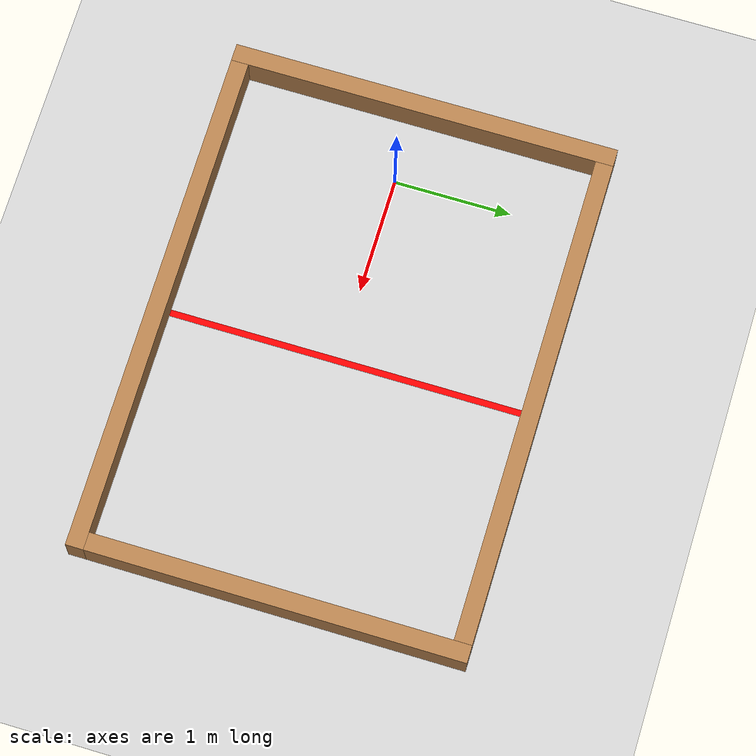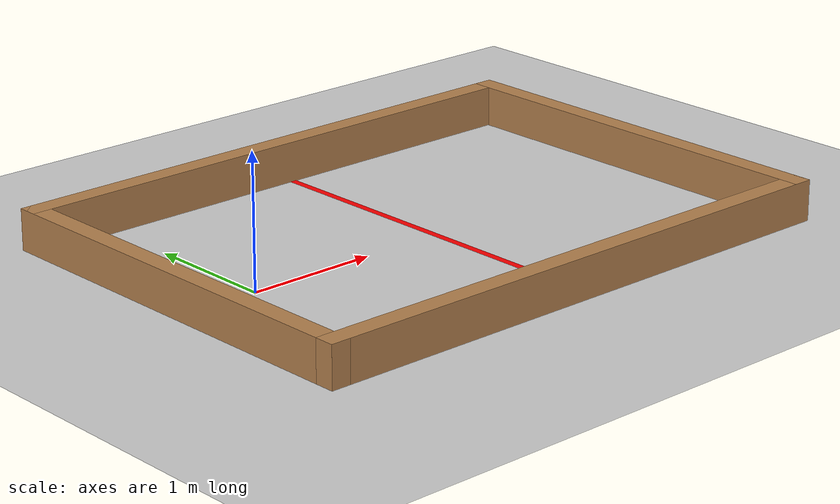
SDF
<sdf version="1.7">
 <world name="default">
  <light name="sun" type="directional">
   <pose>0 0 10 0 -0 0</pose>
   <diffuse>0.8 0.8 0.8 1</diffuse>
   <specular>0.2 0.2 0.2 1</specular>
   <attenuation>
    <range>1000</range>
    <constant>0.9</constant>
    <linear>0.01</linear>
    <quadratic>0.001</quadratic>
   </attenuation>
   <direction>-0.5 0.1 -0.9</direction>
   <spot><inner_angle>0</inner_angle><outer_angle>0</outer_angle><falloff>0</falloff></spot>
  </light>
  <model name="ground_plane">
   <static>1</static>
   <link name="link">
    <collision name="collision">
     <geometry><plane><normal>0 0 1</normal><size>100 100</size></plane></geometry>
     <surface>
      <contact><collide_bitmask>65535</collide_bitmask></contact>
      <friction><ode><mu>100</mu><mu2>50</mu2></ode></friction>
     </surface>
    </collision>
    <visual name="visual">
     <cast_shadows>0</cast_shadows>
     <geometry><plane><normal>0 0 1</normal><size>100 100</size></plane></geometry>
     <material>
      <script><uri>file://media/materials/scripts/gazebo.material</uri><name>Gazebo/Grey</name></script>
     </material>
    </visual>
   </link>
  </model>
  <gravity>0 0 -9.8</gravity>
  <magnetic_field>6e-06 2.3e-05 -4.2e-05</magnetic_field>
  <atmosphere type="adiabatic"/>
  <physics type="ode">
   <max_step_size>0.001</max_step_size>
   <real_time_factor>1</real_time_factor>
   <real_time_update_rate>1000</real_time_update_rate>
  </physics>
  <scene><ambient>0.4 0.4 0.4 1</ambient><background>0.7 0.7 0.7 1</background><shadows>1</shadows></scene>
  <spherical_coordinates>
   <surface_model>EARTH_WGS84</surface_model>
   <latitude_deg>0</latitude_deg>
   <longitude_deg>0</longitude_deg>
   <elevation>0</elevation>
   <heading_deg>0</heading_deg>
  </spherical_coordinates>
  <model name="DEB_playground">
   <pose>3.76449 0.063936 0 0 -0 0</pose>
   <link name="Wall_14">
    <collision name="Wall_14_Collision">
     <geometry><box><size>3.3 0.15 0.31</size></box></geometry>
     <pose>0 0 0.155 0 -0 0</pose>
    </collision>
    <visual name="Wall_14_Visual">
     <pose>0 0 0.155 0 -0 0</pose>
     <geometry><box><size>3.3 0.15 0.31</size></box></geometry>
     <material>
      <script><uri>file://media/materials/scripts/gazebo.material</uri><name>Gazebo/Wood</name></script>
      <ambient>1 1 1 1</ambient>
     </material>
     <meta><layer>0</layer></meta>
    </visual>
    <pose>-0.028 0 0 0 -0 -1.5708</pose>
   </link>
   <link name="Wall_16">
    <collision name="Wall_16_Collision">
     <geometry><box><size>4.5 0.15 0.31</size></box></geometry>
     <pose>0 0 0.155 0 -0 0</pose>
    </collision>
    <visual name="Wall_16_Visual">
     <pose>0 0 0.155 0 -0 0</pose>
     <geometry><box><size>4.5 0.15 0.31</size></box></geometry>
     <material>
      <script><uri>file://media/materials/scripts/gazebo.material</uri><name>Gazebo/Wood</name></script>
      <ambient>1 1 1 1</ambient>
     </material>
     <meta><layer>0</layer></meta>
    </visual>
    <pose>-2.203 -1.575 0 0 -0 3.14159</pose>
   </link>
   <link name="Wall_17">
    <collision name="Wall_17_Collision">
     <geometry><box><size>3.3 0.15 0.31</size></box></geometry>
     <pose>0 0 0.155 0 -0 0</pose>
    </collision>
    <visual name="Wall_17_Visual">
     <pose>0 0 0.155 0 -0 0</pose>
     <geometry><box><size>3.3 0.15 0.31</size></box></geometry>
     <material>
      <script><uri>file://media/materials/scripts/gazebo.material</uri><name>Gazebo/Wood</name></script>
      <ambient>1 1 1 1</ambient>
     </material>
     <meta><layer>0</layer></meta>
    </visual>
    <pose>-4.378 0 0 0 -0 1.5708</pose>
   </link>
   <link name="Wall_21">
    <collision name="Wall_21_Collision">
     <geometry><box><size>4.5 0.15 0.31</size></box></geometry>
     <pose>0 0 0.155 0 -0 0</pose>
    </collision>
    <visual name="Wall_21_Visual">
     <pose>0 0 0.155 0 -0 0</pose>
     <geometry><box><size>4.5 0.15 0.31</size></box></geometry>
     <material>
      <script><uri>file://media/materials/scripts/gazebo.material</uri><name>Gazebo/Wood</name></script>
      <ambient>1 1 1 1</ambient>
     </material>
     <meta><layer>0</layer></meta>
    </visual>
    <pose>-2.203 1.575 0 0 -0 0</pose>
   </link>
   <link name="MiddleLine">
    <collision name="MiddleLine_Collision">
     <geometry><box><size>3.25 0.055 0</size></box></geometry>
     <pose>0 0 0.0025 0 -0 0</pose>
    </collision>
    <visual name="MiddleLine_Visual">
     <pose>0 0 0.0025 0 -0 0</pose>
     <geometry><box><size>3.25 0.055 0</size></box></geometry>
     <material>
      <script><uri>file://media/materials/scripts/gazebo.material</uri><name>Gazebo/Grey</name></script>
      <ambient>0.99 0 0 1</ambient>
     </material>
     <meta><layer>0</layer></meta>
    </visual>
    <pose>-2.128 0.025 0 0 -0 -1.5708</pose>
   </link>
   <static>1</static>
  </model>
 </world>
</sdf>
